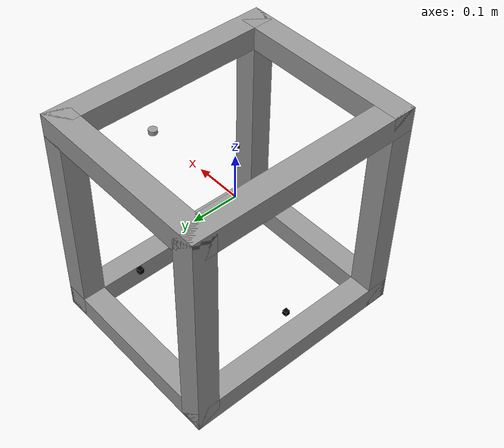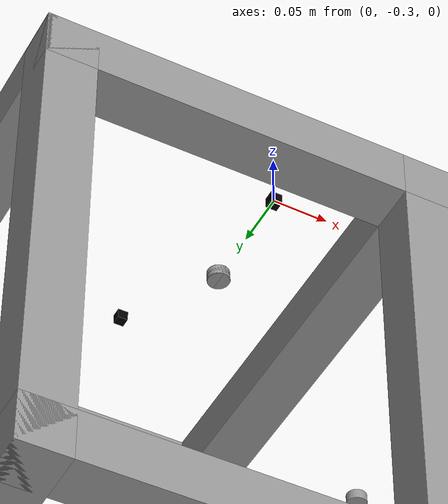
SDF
<?xml version='1.0'?>
<sdf version='1.7'>
  <model name='High_Performance_Caribou'>
    <link name='chassis'>
      <inertial>
        <mass>23</mass>
        <inertia>
          <ixx>0</ixx>
          <ixy>0</ixy>
          <ixz>0</ixz>
          <iyy>0</iyy>
          <iyz>0</iyz>
          <izz>0</izz>
        </inertia>
        <pose>0 0 0 0 -0 0</pose>
        <frame name='chassis_frame'>
          <pose>0.00021834938853005234831 0.0026258751704539458338 -0.047190191410688107909 0 0 0</pose>
        </frame>
      </inertial>
      <self_collide>0</self_collide>
      <enable_wind>0</enable_wind>
      <kinematic>0</kinematic>
      <pose>0.012991 0.00535 0 0 -0 0</pose>
      <gravity>1</gravity>
      <frame name='chassis_frame'>
        <pose>0 0 0 0 -0 0</pose>
      </frame>
      <visual name='visual'>
        <pose>0.18 0 0.175 0 -0 0</pose>
        <geometry>
          <box>
            <size>0.05 0.5 0.05</size>
          </box>
        </geometry>
        <material>
          <lighting>1</lighting>
          <script>
            <uri>file://media/materials/scripts/gazebo.material</uri>
            <name>Gazebo/Grey</name>
          </script>
          <shader type='pixel'>
            <normal_map>__default__</normal_map>
          </shader>
          <ambient>0.3 0.3 0.3 1</ambient>
          <diffuse>0.7 0.7 0.7 1</diffuse>
          <specular>0.01 0.01 0.01 1</specular>
          <emissive>0 0 0 1</emissive>
        </material>
        <transparency>0</transparency>
        <cast_shadows>1</cast_shadows>
      </visual>
      <visual name='ModelPreview_5::chassis::visual_2'>
        <pose>-0.18 0 -0.275 0 -0 0</pose>
        <geometry>
          <box>
            <size>0.05 0.5 0.05</size>
          </box>
        </geometry>
        <material>
          <lighting>1</lighting>
          <script>
            <uri>file://media/materials/scripts/gazebo.material</uri>
            <name>Gazebo/Grey</name>
          </script>
          <shader type='pixel'>
            <normal_map>__default__</normal_map>
          </shader>
          <ambient>0.3 0.3 0.3 1</ambient>
          <diffuse>0.7 0.7 0.7 1</diffuse>
          <specular>0.01 0.01 0.01 1</specular>
          <emissive>0 0 0 1</emissive>
        </material>
        <transparency>0</transparency>
        <cast_shadows>1</cast_shadows>
      </visual>
      <visual name='ModelPreview_5::chassis::visual_3'>
        <pose>-0.18 0 0.175 0 -0 0</pose>
        <geometry>
          <box>
            <size>0.05 0.5 0.05</size>
          </box>
        </geometry>
        <material>
          <lighting>1</lighting>
          <script>
            <uri>file://media/materials/scripts/gazebo.material</uri>
            <name>Gazebo/Grey</name>
          </script>
          <shader type='pixel'>
            <normal_map>__default__</normal_map>
          </shader>
          <ambient>0.3 0.3 0.3 1</ambient>
          <diffuse>0.7 0.7 0.7 1</diffuse>
          <specular>0.01 0.01 0.01 1</specular>
          <emissive>0 0 0 1</emissive>
        </material>
        <transparency>0</transparency>
        <cast_shadows>1</cast_shadows>
      </visual>
      <visual name='ModelPreview_5::chassis::visual_1'>
        <pose>0.18 0 -0.275 0 -0 0</pose>
        <geometry>
          <box>
            <size>0.05 0.5 0.05</size>
          </box>
        </geometry>
        <material>
          <lighting>1</lighting>
          <script>
            <uri>file://media/materials/scripts/gazebo.material</uri>
            <name>Gazebo/Grey</name>
          </script>
          <shader type='pixel'>
            <normal_map>__default__</normal_map>
          </shader>
          <ambient>0.3 0.3 0.3 1</ambient>
          <diffuse>0.7 0.7 0.7 1</diffuse>
          <specular>0.01 0.01 0.01 1</specular>
          <emissive>0 0 0 1</emissive>
        </material>
        <transparency>0</transparency>
        <cast_shadows>1</cast_shadows>
      </visual>
      <visual name='ModelPreview_5::chassis::visual_7'>
        <pose>0 0.225 0.175 0 -0 0</pose>
        <geometry>
          <box>
            <size>0.41 0.05 0.05</size>
          </box>
        </geometry>
        <material>
          <lighting>1</lighting>
          <script>
            <uri>file://media/materials/scripts/gazebo.material</uri>
            <name>Gazebo/Grey</name>
          </script>
          <shader type='pixel'>
            <normal_map>__default__</normal_map>
          </shader>
          <ambient>0.3 0.3 0.3 1</ambient>
          <diffuse>0.7 0.7 0.7 1</diffuse>
          <specular>0.01 0.01 0.01 1</specular>
          <emissive>0 0 0 1</emissive>
        </material>
        <transparency>0</transparency>
        <cast_shadows>1</cast_shadows>
      </visual>
      <visual name='ModelPreview_5::chassis::visual_5'>
        <pose>0 -0.225 -0.275 0 -0 0</pose>
        <geometry>
          <box>
            <size>0.41 0.05 0.05</size>
          </box>
        </geometry>
        <material>
          <lighting>1</lighting>
          <script>
            <uri>file://media/materials/scripts/gazebo.material</uri>
            <name>Gazebo/Grey</name>
          </script>
          <shader type='pixel'>
            <normal_map>__default__</normal_map>
          </shader>
          <ambient>0.3 0.3 0.3 1</ambient>
          <diffuse>0.7 0.7 0.7 1</diffuse>
          <specular>0.01 0.01 0.01 1</specular>
          <emissive>0 0 0 1</emissive>
        </material>
        <transparency>0</transparency>
        <cast_shadows>1</cast_shadows>
      </visual>
      <visual name='ModelPreview_5::chassis::visual_6'>
        <pose>0 -0.225 0.175 0 -0 0</pose>
        <geometry>
          <box>
            <size>0.41 0.05 0.05</size>
          </box>
        </geometry>
        <material>
          <lighting>1</lighting>
          <script>
            <uri>file://media/materials/scripts/gazebo.material</uri>
            <name>Gazebo/Grey</name>
          </script>
          <shader type='pixel'>
            <normal_map>__default__</normal_map>
          </shader>
          <ambient>0.3 0.3 0.3 1</ambient>
          <diffuse>0.7 0.7 0.7 1</diffuse>
          <specular>0.01 0.01 0.01 1</specular>
          <emissive>0 0 0 1</emissive>
        </material>
        <transparency>0</transparency>
        <cast_shadows>1</cast_shadows>
      </visual>
      <visual name='ModelPreview_5::chassis::visual_4'>
        <pose>0 0.225 -0.275 0 -0 0</pose>
        <geometry>
          <box>
            <size>0.41 0.05 0.05</size>
          </box>
        </geometry>
        <material>
          <lighting>1</lighting>
          <script>
            <uri>file://media/materials/scripts/gazebo.material</uri>
            <name>Gazebo/Grey</name>
          </script>
          <shader type='pixel'>
            <normal_map>__default__</normal_map>
          </shader>
          <ambient>0.3 0.3 0.3 1</ambient>
          <diffuse>0.7 0.7 0.7 1</diffuse>
          <specular>0.01 0.01 0.01 1</specular>
          <emissive>0 0 0 1</emissive>
        </material>
        <transparency>0</transparency>
        <cast_shadows>1</cast_shadows>
      </visual>
      <visual name='ModelPreview_5::chassis::visual_8'>
        <pose>0.18 0.225 -0.05 0 -0 0</pose>
        <geometry>
          <box>
            <size>0.05 0.05 0.5</size>
          </box>
        </geometry>
        <material>
          <lighting>1</lighting>
          <script>
            <uri>file://media/materials/scripts/gazebo.material</uri>
            <name>Gazebo/Grey</name>
          </script>
          <shader type='pixel'>
            <normal_map>__default__</normal_map>
          </shader>
          <ambient>0.3 0.3 0.3 1</ambient>
          <diffuse>0.7 0.7 0.7 1</diffuse>
          <specular>0.01 0.01 0.01 1</specular>
          <emissive>0 0 0 1</emissive>
        </material>
        <transparency>0</transparency>
        <cast_shadows>1</cast_shadows>
      </visual>
      <visual name='ModelPreview_5::chassis::visual_9'>
        <pose>-0.18 0.225 -0.05 0 -0 0</pose>
        <geometry>
          <box>
            <size>0.05 0.05 0.5</size>
          </box>
        </geometry>
        <material>
          <lighting>1</lighting>
          <script>
            <uri>file://media/materials/scripts/gazebo.material</uri>
            <name>Gazebo/Grey</name>
          </script>
          <shader type='pixel'>
            <normal_map>__default__</normal_map>
          </shader>
          <ambient>0.3 0.3 0.3 1</ambient>
          <diffuse>0.7 0.7 0.7 1</diffuse>
          <specular>0.01 0.01 0.01 1</specular>
          <emissive>0 0 0 1</emissive>
        </material>
        <transparency>0</transparency>
        <cast_shadows>1</cast_shadows>
      </visual>
      <visual name='ModelPreview_5::chassis::visual_10'>
        <pose>-0.18 -0.225 -0.05 0 -0 0</pose>
        <geometry>
          <box>
            <size>0.05 0.05 0.5</size>
          </box>
        </geometry>
        <material>
          <lighting>1</lighting>
          <script>
            <uri>file://media/materials/scripts/gazebo.material</uri>
            <name>Gazebo/Grey</name>
          </script>
          <shader type='pixel'>
            <normal_map>__default__</normal_map>
          </shader>
          <ambient>0.3 0.3 0.3 1</ambient>
          <diffuse>0.7 0.7 0.7 1</diffuse>
          <specular>0.01 0.01 0.01 1</specular>
          <emissive>0 0 0 1</emissive>
        </material>
        <transparency>0</transparency>
        <cast_shadows>1</cast_shadows>
      </visual>
      <visual name='ModelPreview_5::chassis::visual_11'>
        <pose>0.18 -0.225 -0.05 0 -0 0</pose>
        <geometry>
          <box>
            <size>0.05 0.05 0.5</size>
          </box>
        </geometry>
        <material>
          <lighting>1</lighting>
          <script>
            <uri>file://media/materials/scripts/gazebo.material</uri>
            <name>Gazebo/Grey</name>
          </script>
          <shader type='pixel'>
            <normal_map>__default__</normal_map>
          </shader>
          <ambient>0.3 0.3 0.3 1</ambient>
          <diffuse>0.7 0.7 0.7 1</diffuse>
          <specular>0.01 0.01 0.01 1</specular>
          <emissive>0 0 0 1</emissive>
        </material>
        <transparency>0</transparency>
        <cast_shadows>1</cast_shadows>
      </visual>
      <collision name='assembly_1_collision'>
        <laser_retro>0</laser_retro>
        <max_contacts>10</max_contacts>
        <pose>0 0 -0.05 0 -0 0</pose>
        <geometry>
          <box>
            <size>0.5 0.5 0.5</size>
          </box>
        </geometry>
        <surface>
          <friction>
            <ode>
              <mu>1</mu>
              <mu2>1</mu2>
              <fdir1>0 0 0</fdir1>
              <slip1>0</slip1>
              <slip2>0</slip2>
            </ode>
            <torsional>
              <coefficient>1</coefficient>
              <patch_radius>0</patch_radius>
              <surface_radius>0</surface_radius>
              <use_patch_radius>1</use_patch_radius>
              <ode>
                <slip>0</slip>
              </ode>
            </torsional>
          </friction>
          <bounce>
            <restitution_coefficient>0</restitution_coefficient>
            <threshold>1e+06</threshold>
          </bounce>
          <contact>
            <collide_without_contact>0</collide_without_contact>
            <collide_without_contact_bitmask>1</collide_without_contact_bitmask>
            <collide_bitmask>1</collide_bitmask>
            <ode>
              <soft_cfm>0</soft_cfm>
              <soft_erp>0.2</soft_erp>
              <kp>1e+13</kp>
              <kd>1</kd>
              <max_vel>0.01</max_vel>
              <min_depth>0</min_depth>
            </ode>
            <bullet>
              <split_impulse>1</split_impulse>
              <split_impulse_penetration_threshold>-0.01</split_impulse_penetration_threshold>
              <soft_cfm>0</soft_cfm>
              <soft_erp>0.2</soft_erp>
              <kp>1e+13</kp>
              <kd>1</kd>
            </bullet>
          </contact>
        </surface>
      </collision>
    </link>
    <link name='camera_0_link'>
      <inertial>
        <mass>0.0191625</mass>
        <inertia>
          <ixx>7.98e-06</ixx>
          <ixy>0</ixy>
          <ixz>0</ixz>
          <iyy>7.98e-06</iyy>
          <iyz>0</iyz>
          <izz>7.98e-06</izz>
        </inertia>
        <pose>0 0 0 0 -0 0</pose>
      </inertial>
      <pose>-0 0.225 -0.04 7e-06 -0 -1.5708</pose>
      <gravity>1</gravity>
      <self_collide>0</self_collide>
      <kinematic>0</kinematic>
      <enable_wind>0</enable_wind>
      <sensor name='camera0' type='camera'>
        <update_rate>60</update_rate>
        <visualize>0</visualize>
        <camera name='head'>
          <horizontal_fov>1.39626</horizontal_fov>
          <image>
            <width>640</width>
            <height>480</height>
            <format>R8G8B8</format>
          </image>
          <clip>
            <near>0.02</near>
            <far>300</far>
          </clip>
          <noise>
            <type>gaussian</type>
            <mean>0</mean>
            <stddev>0.007</stddev>
          </noise>
        </camera>
        <plugin name='camera_0_controller' filename='libgazebo_ros_camera.so'>
          <ros>
            <namespace>demo_cam</namespace>
            <remapping>image_raw:=image_demo_0</remapping>
            <remapping>camera_info:=camera_info_demo_0</remapping>
          </ros>
        </plugin>
      </sensor>
      <visual name='visual'>
        <pose>0 0 0 0 -0 0</pose>
        <geometry>
          <box>
            <size>0.01 0.01 0.01</size>
          </box>
        </geometry>
        <material>
          <shader type='pixel'>
            <normal_map>__default__</normal_map>
          </shader>
          <script>
            <name>ModelPreview_4::camera_0_link::visual_MATERIAL_</name>
            <uri>__default__</uri>
          </script>
          <ambient>0 0 0 1</ambient>
          <diffuse>0 0 0 1</diffuse>
          <specular>0 0 0 1</specular>
          <emissive>0 0 0 1</emissive>
        </material>
        <transparency>0</transparency>
        <cast_shadows>1</cast_shadows>
      </visual>
      <collision name='collision_0'>
        <laser_retro>0</laser_retro>
        <max_contacts>10</max_contacts>
        <pose>0 0 0 0 -0 0</pose>
        <geometry>
          <box>
            <size>0.01 0.01 0.01</size>
          </box>
        </geometry>
        <surface>
          <friction>
            <ode>
              <mu>1</mu>
              <mu2>1</mu2>
              <fdir1>0 0 0</fdir1>
              <slip1>0</slip1>
              <slip2>0</slip2>
            </ode>
            <torsional>
              <coefficient>1</coefficient>
              <patch_radius>0</patch_radius>
              <surface_radius>0</surface_radius>
              <use_patch_radius>1</use_patch_radius>
              <ode>
                <slip>0</slip>
              </ode>
            </torsional>
          </friction>
          <bounce>
            <restitution_coefficient>0</restitution_coefficient>
            <threshold>1e+06</threshold>
          </bounce>
          <contact>
            <collide_without_contact>0</collide_without_contact>
            <collide_without_contact_bitmask>1</collide_without_contact_bitmask>
            <collide_bitmask>1</collide_bitmask>
            <ode>
              <soft_cfm>0</soft_cfm>
              <soft_erp>0.2</soft_erp>
              <kp>1e+13</kp>
              <kd>1</kd>
              <max_vel>0.01</max_vel>
              <min_depth>0</min_depth>
            </ode>
            <bullet>
              <split_impulse>1</split_impulse>
              <split_impulse_penetration_threshold>-0.01</split_impulse_penetration_threshold>
              <soft_cfm>0</soft_cfm>
              <soft_erp>0.2</soft_erp>
              <kp>1e+13</kp>
              <kd>1</kd>
            </bullet>
          </contact>
        </surface>
      </collision>
    </link>
    <link name='camera_1_link'>
      <inertial>
        <mass>0.0191625</mass>
        <inertia>
          <ixx>7.98e-06</ixx>
          <ixy>0</ixy>
          <ixz>0</ixz>
          <iyy>7.98e-06</iyy>
          <iyz>0</iyz>
          <izz>7.98e-06</izz>
        </inertia>
        <pose>0 0 0 0 -0 0</pose>
      </inertial>
      <pose>-0 -0.3 -0 -3.12791 1.57079 -1.55712</pose>
      <gravity>1</gravity>
      <self_collide>0</self_collide>
      <kinematic>0</kinematic>
      <enable_wind>0</enable_wind>
      <sensor name='camera1' type='camera'>
        <update_rate>60</update_rate>
        <visualize>0</visualize>
        <camera name='head'>
          <horizontal_fov>1.39626</horizontal_fov>
          <image>
            <width>640</width>
            <height>480</height>
            <format>R8G8B8</format>
          </image>
          <clip>
            <near>0.02</near>
            <far>300</far>
          </clip>
          <noise>
            <type>gaussian</type>
            <mean>0</mean>
            <stddev>0.007</stddev>
          </noise>
        </camera>
        <plugin name='camera_1_controller' filename='libgazebo_ros_camera.so'>
          <ros>
            <namespace>demo_cam</namespace>
            <remapping>image_raw:=image_demo_1</remapping>
            <remapping>camera_info:=camera_info_demo_1</remapping>
          </ros>
        </plugin>
      </sensor>
      <visual name='visual'>
        <pose>0 0 0 0 -0 0</pose>
        <geometry>
          <box>
            <size>0.01 0.01 0.01</size>
          </box>
        </geometry>
        <transparency>0</transparency>
        <cast_shadows>1</cast_shadows>
        <material>
          <shader type='pixel'>
            <normal_map>__default__</normal_map>
          </shader>
          <script>
            <name>ModelPreview_1::camera_1_link::visual_MATERIAL_</name>
            <uri>__default__</uri>
          </script>
          <ambient>0 0 0 1</ambient>
          <diffuse>0 0 0 1</diffuse>
          <specular>0 0 0 1</specular>
          <emissive>0 0 0 1</emissive>
        </material>
      </visual>
      <collision name='collision_0'>
        <laser_retro>0</laser_retro>
        <max_contacts>10</max_contacts>
        <pose>0 0 0 0 -0 0</pose>
        <geometry>
          <box>
            <size>0.01 0.01 0.01</size>
          </box>
        </geometry>
        <surface>
          <friction>
            <ode>
              <mu>1</mu>
              <mu2>1</mu2>
              <fdir1>0 0 0</fdir1>
              <slip1>0</slip1>
              <slip2>0</slip2>
            </ode>
            <torsional>
              <coefficient>1</coefficient>
              <patch_radius>0</patch_radius>
              <surface_radius>0</surface_radius>
              <use_patch_radius>1</use_patch_radius>
              <ode>
                <slip>0</slip>
              </ode>
            </torsional>
          </friction>
          <bounce>
            <restitution_coefficient>0</restitution_coefficient>
            <threshold>1e+06</threshold>
          </bounce>
          <contact>
            <collide_without_contact>0</collide_without_contact>
            <collide_without_contact_bitmask>1</collide_without_contact_bitmask>
            <collide_bitmask>1</collide_bitmask>
            <ode>
              <soft_cfm>0</soft_cfm>
              <soft_erp>0.2</soft_erp>
              <kp>1e+13</kp>
              <kd>1</kd>
              <max_vel>0.01</max_vel>
              <min_depth>0</min_depth>
            </ode>
            <bullet>
              <split_impulse>1</split_impulse>
              <split_impulse_penetration_threshold>-0.01</split_impulse_penetration_threshold>
              <soft_cfm>0</soft_cfm>
              <soft_erp>0.2</soft_erp>
              <kp>1e+13</kp>
              <kd>1</kd>
            </bullet>
          </contact>
        </surface>
      </collision>
    </link>
    <link name='camera_2_link'>
      <inertial>
        <mass>0.0191625</mass>
        <inertia>
          <ixx>7.98e-06</ixx>
          <ixy>0</ixy>
          <ixz>0</ixz>
          <iyy>7.98e-06</iyy>
          <iyz>0</iyz>
          <izz>7.98e-06</izz>
        </inertia>
        <pose>0 0 0 0 -0 0</pose>
      </inertial>
      <pose>-0.15 0 -0.2 0 -0 -3.14159</pose>
      <gravity>1</gravity>
      <self_collide>0</self_collide>
      <kinematic>0</kinematic>
      <enable_wind>0</enable_wind>
      <sensor name='camera2' type='camera'>
        <update_rate>60</update_rate>
        <visualize>0</visualize>
        <camera name='head'>
          <horizontal_fov>1.39626</horizontal_fov>
          <image>
            <width>640</width>
            <height>480</height>
            <format>R8G8B8</format>
          </image>
          <clip>
            <near>0.02</near>
            <far>300</far>
          </clip>
          <noise>
            <type>gaussian</type>
            <mean>0</mean>
            <stddev>0.007</stddev>
          </noise>
        </camera>
        <plugin name='camera_2_controller' filename='libgazebo_ros_camera.so'>
          <ros>
            <namespace>demo_cam</namespace>
            <remapping>image_raw:=image_demo_2</remapping>
            <remapping>camera_info:=camera_info_demo_2</remapping>
          </ros>
        </plugin>
      </sensor>
      <visual name='visual'>
        <pose>0 0 0 0 -0 0</pose>
        <geometry>
          <box>
            <size>0.01 0.01 0.01</size>
          </box>
        </geometry>
        <transparency>0</transparency>
        <cast_shadows>1</cast_shadows>
        <material>
          <shader type='pixel'>
            <normal_map>__default__</normal_map>
          </shader>
          <script>
            <name>ModelPreview_1::camera_2_link::visual_MATERIAL_</name>
            <uri>__default__</uri>
          </script>
          <ambient>0 0 0 1</ambient>
          <diffuse>0 0 0 1</diffuse>
          <specular>0 0 0 1</specular>
          <emissive>0 0 0 1</emissive>
        </material>
      </visual>
      <collision name='collision_0'>
        <laser_retro>0</laser_retro>
        <max_contacts>10</max_contacts>
        <pose>0 0 0 0 -0 0</pose>
        <geometry>
          <box>
            <size>0.01 0.01 0.01</size>
          </box>
        </geometry>
        <surface>
          <friction>
            <ode>
              <mu>1</mu>
              <mu2>1</mu2>
              <fdir1>0 0 0</fdir1>
              <slip1>0</slip1>
              <slip2>0</slip2>
            </ode>
            <torsional>
              <coefficient>1</coefficient>
              <patch_radius>0</patch_radius>
              <surface_radius>0</surface_radius>
              <use_patch_radius>1</use_patch_radius>
              <ode>
                <slip>0</slip>
              </ode>
            </torsional>
          </friction>
          <bounce>
            <restitution_coefficient>0</restitution_coefficient>
            <threshold>1e+06</threshold>
          </bounce>
          <contact>
            <collide_without_contact>0</collide_without_contact>
            <collide_without_contact_bitmask>1</collide_without_contact_bitmask>
            <collide_bitmask>1</collide_bitmask>
            <ode>
              <soft_cfm>0</soft_cfm>
              <soft_erp>0.2</soft_erp>
              <kp>1e+13</kp>
              <kd>1</kd>
              <max_vel>0.01</max_vel>
              <min_depth>0</min_depth>
            </ode>
            <bullet>
              <split_impulse>1</split_impulse>
              <split_impulse_penetration_threshold>-0.01</split_impulse_penetration_threshold>
              <soft_cfm>0</soft_cfm>
              <soft_erp>0.2</soft_erp>
              <kp>1e+13</kp>
              <kd>1</kd>
            </bullet>
          </contact>
        </surface>
      </collision>
    </link>
    <link name='camera_3_link'>
      <inertial>
        <mass>0.0191625</mass>
        <inertia>
          <ixx>7.98e-06</ixx>
          <ixy>0</ixy>
          <ixz>0</ixz>
          <iyy>7.98e-06</iyy>
          <iyz>0</iyz>
          <izz>7.98e-06</izz>
        </inertia>
        <pose>0 0 0 0 -0 0</pose>
      </inertial>
      <pose>-0 -0 0.125 3.14158 -1.57079 -3.14159</pose>
      <gravity>1</gravity>
      <self_collide>0</self_collide>
      <kinematic>0</kinematic>
      <enable_wind>0</enable_wind>
      <sensor name='camera3' type='camera'>
        <update_rate>60</update_rate>
        <visualize>0</visualize>
        <camera name='head'>
          <horizontal_fov>1.39626</horizontal_fov>
          <image>
            <width>640</width>
            <height>480</height>
            <format>R8G8B8</format>
          </image>
          <clip>
            <near>0.02</near>
            <far>300</far>
          </clip>
          <noise>
            <type>gaussian</type>
            <mean>0</mean>
            <stddev>0.007</stddev>
          </noise>
        </camera>
        <plugin name='camera_3_controller' filename='libgazebo_ros_camera.so'>
          <ros>
            <namespace>demo_cam</namespace>
            <remapping>image_raw:=image_demo_3</remapping>
            <remapping>camera_info:=camera_info_demo_3</remapping>
          </ros>
        </plugin>
      </sensor>
      <visual name='visual'>
        <pose>0 0 0 0 -0 0</pose>
        <geometry>
          <box>
            <size>0.01 0.01 0.01</size>
          </box>
        </geometry>
        <transparency>0</transparency>
        <cast_shadows>1</cast_shadows>
        <material>
          <shader type='pixel'>
            <normal_map>__default__</normal_map>
          </shader>
          <script>
            <name>ModelPreview_1::camera_3_link::visual_MATERIAL_</name>
            <uri>__default__</uri>
          </script>
          <ambient>0 0 0 1</ambient>
          <diffuse>0 0 0 1</diffuse>
          <specular>0 0 0 1</specular>
          <emissive>0 0 0 1</emissive>
        </material>
      </visual>
      <collision name='collision_0'>
        <laser_retro>0</laser_retro>
        <max_contacts>10</max_contacts>
        <pose>0 0 0 0 -0 0</pose>
        <geometry>
          <box>
            <size>0.01 0.01 0.01</size>
          </box>
        </geometry>
        <surface>
          <friction>
            <ode>
              <mu>1</mu>
              <mu2>1</mu2>
              <fdir1>0 0 0</fdir1>
              <slip1>0</slip1>
              <slip2>0</slip2>
            </ode>
            <torsional>
              <coefficient>1</coefficient>
              <patch_radius>0</patch_radius>
              <surface_radius>0</surface_radius>
              <use_patch_radius>1</use_patch_radius>
              <ode>
                <slip>0</slip>
              </ode>
            </torsional>
          </friction>
          <bounce>
            <restitution_coefficient>0</restitution_coefficient>
            <threshold>1e+06</threshold>
          </bounce>
          <contact>
            <collide_without_contact>0</collide_without_contact>
            <collide_without_contact_bitmask>1</collide_without_contact_bitmask>
            <collide_bitmask>1</collide_bitmask>
            <ode>
              <soft_cfm>0</soft_cfm>
              <soft_erp>0.2</soft_erp>
              <kp>1e+13</kp>
              <kd>1</kd>
              <max_vel>0.01</max_vel>
              <min_depth>0</min_depth>
            </ode>
            <bullet>
              <split_impulse>1</split_impulse>
              <split_impulse_penetration_threshold>-0.01</split_impulse_penetration_threshold>
              <soft_cfm>0</soft_cfm>
              <soft_erp>0.2</soft_erp>
              <kp>1e+13</kp>
              <kd>1</kd>
            </bullet>
          </contact>
        </surface>
      </collision>
    </link>
    <link name='pitch_link'>
      <inertial>
        <mass>0.00048161</mass>
        <inertia>
          <ixx>0.145833</ixx>
          <ixy>0</ixy>
          <ixz>0</ixz>
          <iyy>0.145833</iyy>
          <iyz>0</iyz>
          <izz>0.125</izz>
        </inertia>
        <pose>0 0 0 0 -0 0</pose>
      </inertial>
      <pose>0 -0.2 0 0 -0 0.000274</pose>
      <gravity>1</gravity>
      <self_collide>0</self_collide>
      <kinematic>0</kinematic>
      <enable_wind>0</enable_wind>
      <visual name='visual'>
        <pose>0 0 0 0 -0 0</pose>
        <geometry>
          <cylinder>
            <radius>0.01</radius>
            <length>0.01</length>
          </cylinder>
        </geometry>
        <material>
          <lighting>1</lighting>
          <script>
            <uri>file://media/materials/scripts/gazebo.material</uri>
            <name>Gazebo/Grey</name>
          </script>
          <shader type='pixel'>
            <normal_map>__default__</normal_map>
          </shader>
          <ambient>0.3 0.3 0.3 1</ambient>
          <diffuse>0.7 0.7 0.7 1</diffuse>
          <specular>0.01 0.01 0.01 1</specular>
          <emissive>0 0 0 1</emissive>
        </material>
        <transparency>0</transparency>
        <cast_shadows>1</cast_shadows>
      </visual>
      <collision name='collision'>
        <laser_retro>0</laser_retro>
        <max_contacts>10</max_contacts>
        <pose>0 0 0 0 -0 0</pose>
        <geometry>
          <cylinder>
            <radius>0.01</radius>
            <length>0.01</length>
          </cylinder>
        </geometry>
        <surface>
          <friction>
            <ode>
              <mu>1</mu>
              <mu2>1</mu2>
              <fdir1>0 0 0</fdir1>
              <slip1>0</slip1>
              <slip2>0</slip2>
            </ode>
            <torsional>
              <coefficient>1</coefficient>
              <patch_radius>0</patch_radius>
              <surface_radius>0</surface_radius>
              <use_patch_radius>1</use_patch_radius>
              <ode>
                <slip>0</slip>
              </ode>
            </torsional>
          </friction>
          <bounce>
            <restitution_coefficient>0</restitution_coefficient>
            <threshold>1e+06</threshold>
          </bounce>
          <contact>
            <collide_without_contact>0</collide_without_contact>
            <collide_without_contact_bitmask>1</collide_without_contact_bitmask>
            <collide_bitmask>1</collide_bitmask>
            <ode>
              <soft_cfm>0</soft_cfm>
              <soft_erp>0.2</soft_erp>
              <kp>1e+13</kp>
              <kd>1</kd>
              <max_vel>0.01</max_vel>
              <min_depth>0</min_depth>
            </ode>
            <bullet>
              <split_impulse>1</split_impulse>
              <split_impulse_penetration_threshold>-0.01</split_impulse_penetration_threshold>
              <soft_cfm>0</soft_cfm>
              <soft_erp>0.2</soft_erp>
              <kp>1e+13</kp>
              <kd>1</kd>
            </bullet>
          </contact>
        </surface>
      </collision>
    </link>
    <link name='roll_link'>
      <inertial>
        <mass>0.00048161</mass>
        <inertia>
          <ixx>0.145833</ixx>
          <ixy>0</ixy>
          <ixz>0</ixz>
          <iyy>0.145833</iyy>
          <iyz>0</iyz>
          <izz>0.125</izz>
        </inertia>
        <pose>0 0 0 0 -0 0</pose>
      </inertial>
      <pose>0.25 -0 -0 0 -0 0</pose>
      <gravity>1</gravity>
      <self_collide>0</self_collide>
      <kinematic>0</kinematic>
      <enable_wind>0</enable_wind>
      <visual name='visual'>
        <pose>0 0 0 0 -0 0</pose>
        <geometry>
          <cylinder>
            <radius>0.01</radius>
            <length>0.01</length>
          </cylinder>
        </geometry>
        <material>
          <lighting>1</lighting>
          <script>
            <uri>file://media/materials/scripts/gazebo.material</uri>
            <name>Gazebo/Grey</name>
          </script>
          <shader type='pixel'>
            <normal_map>__default__</normal_map>
          </shader>
          <ambient>0.3 0.3 0.3 1</ambient>
          <diffuse>0.7 0.7 0.7 1</diffuse>
          <specular>0.01 0.01 0.01 1</specular>
          <emissive>0 0 0 1</emissive>
        </material>
        <transparency>0</transparency>
        <cast_shadows>1</cast_shadows>
      </visual>
      <collision name='collision'>
        <laser_retro>0</laser_retro>
        <max_contacts>10</max_contacts>
        <pose>0 0 0 0 -0 0</pose>
        <geometry>
          <cylinder>
            <radius>0.01</radius>
            <length>0.01</length>
          </cylinder>
        </geometry>
        <surface>
          <friction>
            <ode>
              <mu>1</mu>
              <mu2>1</mu2>
              <fdir1>0 0 0</fdir1>
              <slip1>0</slip1>
              <slip2>0</slip2>
            </ode>
            <torsional>
              <coefficient>1</coefficient>
              <patch_radius>0</patch_radius>
              <surface_radius>0</surface_radius>
              <use_patch_radius>1</use_patch_radius>
              <ode>
                <slip>0</slip>
              </ode>
            </torsional>
          </friction>
          <bounce>
            <restitution_coefficient>0</restitution_coefficient>
            <threshold>1e+06</threshold>
          </bounce>
          <contact>
            <collide_without_contact>0</collide_without_contact>
            <collide_without_contact_bitmask>1</collide_without_contact_bitmask>
            <collide_bitmask>1</collide_bitmask>
            <ode>
              <soft_cfm>0</soft_cfm>
              <soft_erp>0.2</soft_erp>
              <kp>1e+13</kp>
              <kd>1</kd>
              <max_vel>0.01</max_vel>
              <min_depth>0</min_depth>
            </ode>
            <bullet>
              <split_impulse>1</split_impulse>
              <split_impulse_penetration_threshold>-0.01</split_impulse_penetration_threshold>
              <soft_cfm>0</soft_cfm>
              <soft_erp>0.2</soft_erp>
              <kp>1e+13</kp>
              <kd>1</kd>
            </bullet>
          </contact>
        </surface>
      </collision>
    </link>
    <link name='yaw_link'>
      <inertial>
        <mass>0.00048161</mass>
        <inertia>
          <ixx>0.145833</ixx>
          <ixy>0</ixy>
          <ixz>0</ixz>
          <iyy>0.145833</iyy>
          <iyz>0</iyz>
          <izz>0.125</izz>
        </inertia>
        <pose>0 0 0 0 -0 0</pose>
      </inertial>
      <pose>0 -0.2 0 0.035474 -0.08677 -0.388683</pose>
      <gravity>1</gravity>
      <self_collide>0</self_collide>
      <kinematic>0</kinematic>
      <enable_wind>0</enable_wind>
      <visual name='visual'>
        <pose>0 0 0 0 -0 0</pose>
        <geometry>
          <cylinder>
            <radius>0.01</radius>
            <length>0.01</length>
          </cylinder>
        </geometry>
        <material>
          <lighting>1</lighting>
          <script>
            <uri>file://media/materials/scripts/gazebo.material</uri>
            <name>Gazebo/Grey</name>
          </script>
          <shader type='pixel'>
            <normal_map>__default__</normal_map>
          </shader>
          <ambient>0.3 0.3 0.3 1</ambient>
          <diffuse>0.7 0.7 0.7 1</diffuse>
          <specular>0.01 0.01 0.01 1</specular>
          <emissive>0 0 0 1</emissive>
        </material>
        <transparency>0</transparency>
        <cast_shadows>1</cast_shadows>
      </visual>
      <collision name='collision'>
        <laser_retro>0</laser_retro>
        <max_contacts>10</max_contacts>
        <pose>0 0 0 0 -0 0</pose>
        <geometry>
          <cylinder>
            <radius>0.01</radius>
            <length>0.01</length>
          </cylinder>
        </geometry>
        <surface>
          <friction>
            <ode>
              <mu>1</mu>
              <mu2>1</mu2>
              <fdir1>0 0 0</fdir1>
              <slip1>0</slip1>
              <slip2>0</slip2>
            </ode>
            <torsional>
              <coefficient>1</coefficient>
              <patch_radius>0</patch_radius>
              <surface_radius>0</surface_radius>
              <use_patch_radius>1</use_patch_radius>
              <ode>
                <slip>0</slip>
              </ode>
            </torsional>
          </friction>
          <bounce>
            <restitution_coefficient>0</restitution_coefficient>
            <threshold>1e+06</threshold>
          </bounce>
          <contact>
            <collide_without_contact>0</collide_without_contact>
            <collide_without_contact_bitmask>1</collide_without_contact_bitmask>
            <collide_bitmask>1</collide_bitmask>
            <ode>
              <soft_cfm>0</soft_cfm>
              <soft_erp>0.2</soft_erp>
              <kp>1e+13</kp>
              <kd>1</kd>
              <max_vel>0.01</max_vel>
              <min_depth>0</min_depth>
            </ode>
            <bullet>
              <split_impulse>1</split_impulse>
              <split_impulse_penetration_threshold>-0.01</split_impulse_penetration_threshold>
              <soft_cfm>0</soft_cfm>
              <soft_erp>0.2</soft_erp>
              <kp>1e+13</kp>
              <kd>1</kd>
            </bullet>
          </contact>
        </surface>
      </collision>
    </link>
    <joint name='chassis_JOINT_0_0' type='fixed'>
      <parent>chassis</parent>
      <child>roll_link</child>
      <pose>0 0 0 0 -0 0</pose>
      <physics>
        <ode>
          <limit>
            <cfm>0</cfm>
            <erp>0.2</erp>
          </limit>
          <suspension>
            <cfm>0</cfm>
            <erp>0.2</erp>
          </suspension>
        </ode>
      </physics>
    </joint>
    <joint name='chassis_JOINT_0_1' type='revolute'>
      <parent>chassis</parent>
      <child>yaw_link</child>
      <pose>0 0 0 0 -0 0</pose>
      <axis>
        <xyz>1 0 0</xyz>
        <limit>
          <lower>-1.79769e+308</lower>
          <upper>1.79769e+308</upper>
          <effort>-1</effort>
          <velocity>-1</velocity>
        </limit>
        <dynamics>
          <spring_reference>0</spring_reference>
          <spring_stiffness>0</spring_stiffness>
          <damping>0</damping>
          <friction>0</friction>
        </dynamics>
      </axis>
      <physics>
        <ode>
          <limit>
            <cfm>0</cfm>
            <erp>0.2</erp>
          </limit>
          <suspension>
            <cfm>0</cfm>
            <erp>0.2</erp>
          </suspension>
        </ode>
      </physics>
    </joint>
    <joint name='chassis_JOINT_0_2' type='fixed'>
      <parent>chassis</parent>
      <child>camera_0_link</child>
      <pose>0 0 0 0 -0 0</pose>
      <physics>
        <ode>
          <limit>
            <cfm>0</cfm>
            <erp>0.2</erp>
          </limit>
          <suspension>
            <cfm>0</cfm>
            <erp>0.2</erp>
          </suspension>
        </ode>
      </physics>
    </joint>
    <joint name='chassis_JOINT_0_3' type='fixed'>
      <parent>chassis</parent>
      <child>camera_2_link</child>
      <pose>0 0 0 0 -0 0</pose>
      <physics>
        <ode>
          <limit>
            <cfm>0</cfm>
            <erp>0.2</erp>
          </limit>
          <suspension>
            <cfm>0</cfm>
            <erp>0.2</erp>
          </suspension>
        </ode>
      </physics>
    </joint>
    <joint name='chassis_JOINT_0' type='fixed'>
      <parent>chassis</parent>
      <child>pitch_link</child>
      <pose>0 0 0 0 -0 0</pose>
      <physics>
        <ode>
          <limit>
            <cfm>0</cfm>
            <erp>0.2</erp>
          </limit>
          <suspension>
            <cfm>0</cfm>
            <erp>0.2</erp>
          </suspension>
        </ode>
      </physics>
    </joint>
    <joint name='chassis_JOINT_1_0' type='fixed'>
      <parent>chassis</parent>
      <child>camera_3_link</child>
      <pose>0 0 0 0 -0 0</pose>
      <physics>
        <ode>
          <limit>
            <cfm>0</cfm>
            <erp>0.2</erp>
          </limit>
          <suspension>
            <cfm>0</cfm>
            <erp>0.2</erp>
          </suspension>
        </ode>
      </physics>
    </joint>
    <joint name='chassis_JOINT_1' type='fixed'>
      <parent>chassis</parent>
      <child>camera_1_link</child>
      <pose>0 0 0 0 -0 0</pose>
      <physics>
        <ode>
          <limit>
            <cfm>0</cfm>
            <erp>0.2</erp>
          </limit>
          <suspension>
            <cfm>0</cfm>
            <erp>0.2</erp>
          </suspension>
        </ode>
      </physics>
    </joint>
    <static>0</static>
    <allow_auto_disable>1</allow_auto_disable>
    <plugin name='buoyancy' filename='libBuoyancyPlugin.so'>
      <fluid_density>145</fluid_density>
    </plugin>
    <plugin name='gazebo_ros_force_linear' filename='libgazebo_ros_force.so'>
      <ros>
        <namespace>/demo/link</namespace>
        <remapping>gazebo_ros_force:=simulation_model_linear_velocity_z</remapping>
      </ros>
      <link_name>chassis</link_name>
      <force_frame>world</force_frame>
    </plugin>
    <plugin name='gazebo_ros_force_pitch' filename='libgazebo_ros_force.so'>
      <ros>
        <namespace>/demo/link</namespace>
        <remapping>gazebo_ros_force:=force_demo_pitch</remapping>
      </ros>
      <link_name>pitch_link</link_name>
      <force_frame>world</force_frame>
    </plugin>
    <plugin name='gazebo_ros_force_roll' filename='libgazebo_ros_force.so'>
      <ros>
        <namespace>/demo/link</namespace>
        <remapping>gazebo_ros_force:=force_demo_roll</remapping>
      </ros>
      <link_name>roll_link</link_name>
      <force_frame>world</force_frame>
    </plugin>
    <plugin name='gazebo_ros_force_yaw' filename='libgazebo_ros_force.so'>
      <ros>
        <namespace>/demo/link</namespace>
        <remapping>gazebo_ros_force:=force_demo_yaw</remapping>
      </ros>
      <link_name>yaw_link</link_name>
      <force_frame>world</force_frame>
    </plugin>
    <plugin name='planar_move' filename='libgazebo_ros_planar_move.so'>
      <ros>
        <namespace>/demo</namespace>
        <remapping>cmd_vel:=simulation_model_linear_velocity_xy</remapping>
        <remapping>odom:=odom_demo</remapping>
      </ros>
      <update_rate>100</update_rate>
      <publish_rate>10</publish_rate>
      <publish_odom>1</publish_odom>
      <publish_odom_tf>1</publish_odom_tf>
      <odometry_frame>odom_demo</odometry_frame>
      <robot_base_frame>chassis</robot_base_frame>
      <covariance_x>0.0001</covariance_x>
      <covariance_y>0.0001</covariance_y>
      <covariance_yaw>0.01</covariance_yaw>
    </plugin>
  </model>
</sdf>
